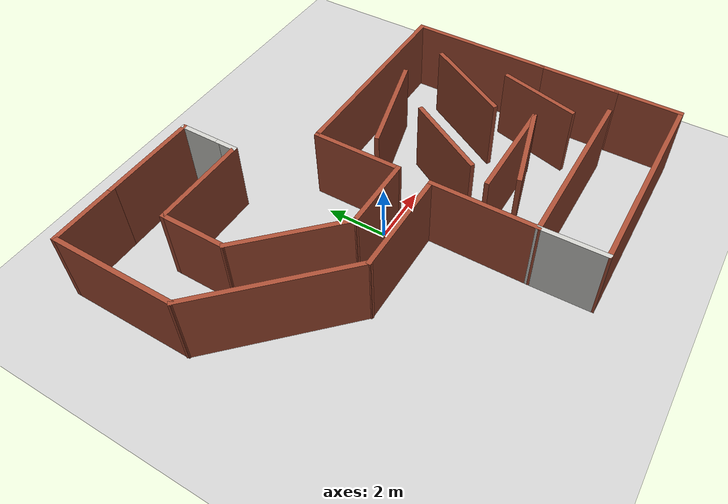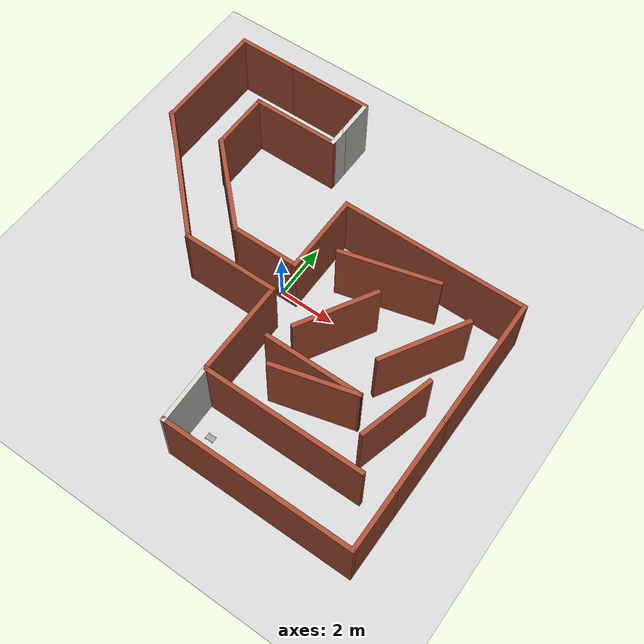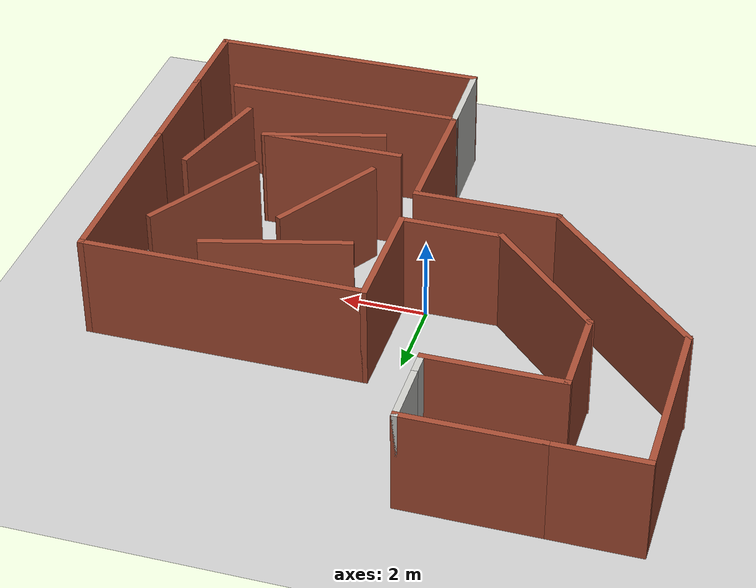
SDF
<sdf version="1.6">
 <world name="default">
  <light name="sun" type="directional">
   <pose>0 0 10 0 -0 0</pose>
   <diffuse>0.8 0.8 0.8 1</diffuse>
   <specular>0.2 0.2 0.2 1</specular>
   <attenuation>
    <range>1000</range>
    <constant>0.9</constant>
    <linear>0.01</linear>
    <quadratic>0.001</quadratic>
   </attenuation>
   <direction>-0.5 0.1 -0.9</direction>
  </light>
  <model name="ground_plane">
   <static>1</static>
   <link name="link">
    <collision name="collision">
     <geometry><plane><normal>0 0 1</normal><size>100 100</size></plane></geometry>
     <surface>
      <contact><collide_bitmask>65535</collide_bitmask></contact>
      <friction><ode><mu>100</mu><mu2>50</mu2></ode></friction>
     </surface>
    </collision>
    <visual name="visual">
     <cast_shadows>0</cast_shadows>
     <geometry><plane><normal>0 0 1</normal><size>100 100</size></plane></geometry>
     <material>
      <script><uri>file://media/materials/scripts/gazebo.material</uri><name>Gazebo/Grey</name></script>
     </material>
    </visual>
   </link>
  </model>
  <gravity>0 0 -9.8</gravity>
  <magnetic_field>6e-06 2.3e-05 -4.2e-05</magnetic_field>
  <atmosphere type="adiabatic"/>
  <physics name="default_physics" default="0" type="ode">
   <max_step_size>0.001</max_step_size>
   <real_time_factor>1</real_time_factor>
   <real_time_update_rate>1000</real_time_update_rate>
  </physics>
  <scene><ambient>0.4 0.4 0.4 1</ambient><background>0.7 0.7 0.7 1</background><shadows>1</shadows></scene>
  <spherical_coordinates>
   <surface_model>EARTH_WGS84</surface_model>
   <latitude_deg>0</latitude_deg>
   <longitude_deg>0</longitude_deg>
   <elevation>0</elevation>
   <heading_deg>0</heading_deg>
  </spherical_coordinates>
  <model name="rover">
   <link name="link">
    <pose>-0 0 -0.46 0 -0 0</pose>
    <inertial>
     <mass>1</mass>
     <inertia>
      <ixx>0.166667</ixx>
      <ixy>0</ixy>
      <ixz>0</ixz>
      <iyy>0.166667</iyy>
      <iyz>0</iyz>
      <izz>0.166667</izz>
     </inertia>
    </inertial>
    <visual name="visual">
     <geometry><box><size>0.3 0.2 0.005</size></box></geometry>
     <material>
      <script><name>Gazebo/Grey</name><uri>file://media/materials/scripts/gazebo.material</uri></script>
      <shader type="pixel"><normal_map>__default__</normal_map></shader>
      <ambient>0.3 0.3 0.3 1</ambient>
      <diffuse>0.7 0.7 0.7 1</diffuse>
      <specular>0.01 0.01 0.01 1</specular>
      <emissive>0 0 0 1</emissive>
     </material>
    </visual>
    <collision name="collision">
     <geometry><box><size>0.3 0.2 0.005</size></box></geometry>
     <surface>
      <friction>
       <ode><mu>1</mu><mu2>1</mu2><fdir1>0 0 0</fdir1><slip1>0</slip1><slip2>0</slip2></ode>
       <torsional>
        <coefficient>1</coefficient>
        <patch_radius>0</patch_radius>
        <surface_radius>0</surface_radius>
        <use_patch_radius>1</use_patch_radius>
        <ode><slip>0</slip></ode>
       </torsional>
      </friction>
      <bounce><restitution_coefficient>0</restitution_coefficient><threshold>1e+06</threshold></bounce>
      <contact>
       <collide_without_contact>0</collide_without_contact>
       <collide_without_contact_bitmask>1</collide_without_contact_bitmask>
       <collide_bitmask>1</collide_bitmask>
       <ode>
        <soft_cfm>0</soft_cfm>
        <soft_erp>0.2</soft_erp>
        <kp>1e+13</kp>
        <kd>1</kd>
        <max_vel>0.01</max_vel>
        <min_depth>0</min_depth>
       </ode>
       <bullet>
        <split_impulse>1</split_impulse>
        <split_impulse_penetration_threshold>-0.01</split_impulse_penetration_threshold>
        <soft_cfm>0</soft_cfm>
        <soft_erp>0.2</soft_erp>
        <kp>1e+13</kp>
        <kd>1</kd>
       </bullet>
      </contact>
     </surface>
    </collision>
   </link>
   <link name="link_0">
    <pose>-0.12 -0.107014 -0.46 1.5707 -0 0</pose>
    <inertial>
     <mass>1</mass>
     <inertia><ixx>0.145833</ixx><ixy>0</ixy><ixz>0</ixz><iyy>0.145833</iyy><iyz>0</iyz><izz>0.125</izz></inertia>
    </inertial>
    <visual name="visual">
     <geometry><cylinder><radius>0.03</radius><length>0.005</length></cylinder></geometry>
     <material>
      <lighting>1</lighting>
      <script><uri>file://media/materials/scripts/gazebo.material</uri><name>Gazebo/Grey</name></script>
      <shader type="pixel"><normal_map>__default__</normal_map></shader>
      <ambient>0.3 0.3 0.3 1</ambient>
      <diffuse>0.7 0.7 0.7 1</diffuse>
      <specular>0.01 0.01 0.01 1</specular>
      <emissive>0 0 0 1</emissive>
     </material>
    </visual>
    <collision name="collision">
     <geometry><cylinder><radius>0.03</radius><length>0.005</length></cylinder></geometry>
     <surface>
      <friction>
       <ode><mu>1</mu><mu2>1</mu2><fdir1>0 0 0</fdir1><slip1>0</slip1><slip2>0</slip2></ode>
       <torsional>
        <coefficient>1</coefficient>
        <patch_radius>0</patch_radius>
        <surface_radius>0</surface_radius>
        <use_patch_radius>1</use_patch_radius>
        <ode><slip>0</slip></ode>
       </torsional>
      </friction>
      <bounce><restitution_coefficient>0</restitution_coefficient><threshold>1e+06</threshold></bounce>
      <contact>
       <collide_without_contact>0</collide_without_contact>
       <collide_without_contact_bitmask>1</collide_without_contact_bitmask>
       <collide_bitmask>1</collide_bitmask>
       <ode>
        <soft_cfm>0</soft_cfm>
        <soft_erp>0.2</soft_erp>
        <kp>1e+13</kp>
        <kd>1</kd>
        <max_vel>0.01</max_vel>
        <min_depth>0</min_depth>
       </ode>
       <bullet>
        <split_impulse>1</split_impulse>
        <split_impulse_penetration_threshold>-0.01</split_impulse_penetration_threshold>
        <soft_cfm>0</soft_cfm>
        <soft_erp>0.2</soft_erp>
        <kp>1e+13</kp>
        <kd>1</kd>
       </bullet>
      </contact>
     </surface>
    </collision>
   </link>
   <link name="link_0_clone">
    <pose>0.12 -0.102503 -0.46 1.5707 -0 0</pose>
    <inertial>
     <mass>1</mass>
     <inertia><ixx>0.145833</ixx><ixy>0</ixy><ixz>0</ixz><iyy>0.145833</iyy><iyz>0</iyz><izz>0.125</izz></inertia>
    </inertial>
    <visual name="visual">
     <geometry><cylinder><radius>0.03</radius><length>0.005</length></cylinder></geometry>
     <material>
      <lighting>1</lighting>
      <script><uri>file://media/materials/scripts/gazebo.material</uri><name>Gazebo/Grey</name></script>
      <shader type="pixel"><normal_map>__default__</normal_map></shader>
      <ambient>0.3 0.3 0.3 1</ambient>
      <diffuse>0.7 0.7 0.7 1</diffuse>
      <specular>0.01 0.01 0.01 1</specular>
      <emissive>0 0 0 1</emissive>
     </material>
    </visual>
    <collision name="collision">
     <geometry><cylinder><radius>0.03</radius><length>0.005</length></cylinder></geometry>
     <surface>
      <friction>
       <ode><mu>1</mu><mu2>1</mu2><fdir1>0 0 0</fdir1><slip1>0</slip1><slip2>0</slip2></ode>
       <torsional>
        <coefficient>1</coefficient>
        <patch_radius>0</patch_radius>
        <surface_radius>0</surface_radius>
        <use_patch_radius>1</use_patch_radius>
        <ode><slip>0</slip></ode>
       </torsional>
      </friction>
      <bounce><restitution_coefficient>0</restitution_coefficient><threshold>1e+06</threshold></bounce>
      <contact>
       <collide_without_contact>0</collide_without_contact>
       <collide_without_contact_bitmask>1</collide_without_contact_bitmask>
       <collide_bitmask>1</collide_bitmask>
       <ode>
        <soft_cfm>0</soft_cfm>
        <soft_erp>0.2</soft_erp>
        <kp>1e+13</kp>
        <kd>1</kd>
        <max_vel>0.01</max_vel>
        <min_depth>0</min_depth>
       </ode>
       <bullet>
        <split_impulse>1</split_impulse>
        <split_impulse_penetration_threshold>-0.01</split_impulse_penetration_threshold>
        <soft_cfm>0</soft_cfm>
        <soft_erp>0.2</soft_erp>
        <kp>1e+13</kp>
        <kd>1</kd>
       </bullet>
      </contact>
     </surface>
    </collision>
   </link>
   <link name="link_0_clone_0">
    <pose>-0.12 0.1025 -0.46 1.5707 -0 0</pose>
    <inertial>
     <mass>1</mass>
     <inertia><ixx>0.145833</ixx><ixy>0</ixy><ixz>0</ixz><iyy>0.145833</iyy><iyz>0</iyz><izz>0.125</izz></inertia>
    </inertial>
    <visual name="visual">
     <geometry><cylinder><radius>0.03</radius><length>0.005</length></cylinder></geometry>
     <material>
      <lighting>1</lighting>
      <script><uri>file://media/materials/scripts/gazebo.material</uri><name>Gazebo/Grey</name></script>
      <shader type="pixel"><normal_map>__default__</normal_map></shader>
      <ambient>0.3 0.3 0.3 1</ambient>
      <diffuse>0.7 0.7 0.7 1</diffuse>
      <specular>0.01 0.01 0.01 1</specular>
      <emissive>0 0 0 1</emissive>
     </material>
    </visual>
    <collision name="collision">
     <geometry><cylinder><radius>0.03</radius><length>0.005</length></cylinder></geometry>
     <surface>
      <friction>
       <ode><mu>1</mu><mu2>1</mu2><fdir1>0 0 0</fdir1><slip1>0</slip1><slip2>0</slip2></ode>
       <torsional>
        <coefficient>1</coefficient>
        <patch_radius>0</patch_radius>
        <surface_radius>0</surface_radius>
        <use_patch_radius>1</use_patch_radius>
        <ode><slip>0</slip></ode>
       </torsional>
      </friction>
      <bounce><restitution_coefficient>0</restitution_coefficient><threshold>1e+06</threshold></bounce>
      <contact>
       <collide_without_contact>0</collide_without_contact>
       <collide_without_contact_bitmask>1</collide_without_contact_bitmask>
       <collide_bitmask>1</collide_bitmask>
       <ode>
        <soft_cfm>0</soft_cfm>
        <soft_erp>0.2</soft_erp>
        <kp>1e+13</kp>
        <kd>1</kd>
        <max_vel>0.01</max_vel>
        <min_depth>0</min_depth>
       </ode>
       <bullet>
        <split_impulse>1</split_impulse>
        <split_impulse_penetration_threshold>-0.01</split_impulse_penetration_threshold>
        <soft_cfm>0</soft_cfm>
        <soft_erp>0.2</soft_erp>
        <kp>1e+13</kp>
        <kd>1</kd>
       </bullet>
      </contact>
     </surface>
    </collision>
   </link>
   <link name="link_0_clone_1">
    <pose>0.12 0.1025 -0.46 1.5707 -0 0</pose>
    <inertial>
     <mass>1</mass>
     <inertia><ixx>0.145833</ixx><ixy>0</ixy><ixz>0</ixz><iyy>0.145833</iyy><iyz>0</iyz><izz>0.125</izz></inertia>
    </inertial>
    <visual name="visual">
     <geometry><cylinder><radius>0.03</radius><length>0.005</length></cylinder></geometry>
     <material>
      <lighting>1</lighting>
      <script><uri>file://media/materials/scripts/gazebo.material</uri><name>Gazebo/Grey</name></script>
      <shader type="pixel"><normal_map>__default__</normal_map></shader>
      <ambient>0.3 0.3 0.3 1</ambient>
      <diffuse>0.7 0.7 0.7 1</diffuse>
      <specular>0.01 0.01 0.01 1</specular>
      <emissive>0 0 0 1</emissive>
     </material>
    </visual>
    <collision name="collision">
     <geometry><cylinder><radius>0.03</radius><length>0.005</length></cylinder></geometry>
     <surface>
      <friction>
       <ode><mu>1</mu><mu2>1</mu2><fdir1>0 0 0</fdir1><slip1>0</slip1><slip2>0</slip2></ode>
       <torsional>
        <coefficient>1</coefficient>
        <patch_radius>0</patch_radius>
        <surface_radius>0</surface_radius>
        <use_patch_radius>1</use_patch_radius>
        <ode><slip>0</slip></ode>
       </torsional>
      </friction>
      <bounce><restitution_coefficient>0</restitution_coefficient><threshold>1e+06</threshold></bounce>
      <contact>
       <collide_without_contact>0</collide_without_contact>
       <collide_without_contact_bitmask>1</collide_without_contact_bitmask>
       <collide_bitmask>1</collide_bitmask>
       <ode>
        <soft_cfm>0</soft_cfm>
        <soft_erp>0.2</soft_erp>
        <kp>1e+13</kp>
        <kd>1</kd>
        <max_vel>0.01</max_vel>
        <min_depth>0</min_depth>
       </ode>
       <bullet>
        <split_impulse>1</split_impulse>
        <split_impulse_penetration_threshold>-0.01</split_impulse_penetration_threshold>
        <soft_cfm>0</soft_cfm>
        <soft_erp>0.2</soft_erp>
        <kp>1e+13</kp>
        <kd>1</kd>
       </bullet>
      </contact>
     </surface>
    </collision>
   </link>
   <joint name="link_JOINT_0" type="revolute">
    <parent>link</parent>
    <child>link_0</child>
    <axis>
     <xyz>0 0 1</xyz>
     <use_parent_model_frame>0</use_parent_model_frame>
     <limit>
      <lower>-1.79769e+308</lower>
      <upper>1.79769e+308</upper>
      <effort>-1</effort>
      <velocity>-1</velocity>
     </limit>
     <dynamics>
      <spring_reference>0</spring_reference>
      <spring_stiffness>0</spring_stiffness>
      <damping>0</damping>
      <friction>0</friction>
     </dynamics>
    </axis>
    <physics>
     <ode><limit><cfm>0</cfm><erp>0.2</erp></limit><suspension><cfm>0</cfm><erp>0.2</erp></suspension></ode>
    </physics>
   </joint>
   <joint name="link_JOINT_1" type="revolute">
    <parent>link</parent>
    <child>link_0_clone</child>
    <axis>
     <xyz>0 0 1</xyz>
     <use_parent_model_frame>0</use_parent_model_frame>
     <limit>
      <lower>-1.79769e+308</lower>
      <upper>1.79769e+308</upper>
      <effort>-1</effort>
      <velocity>-1</velocity>
     </limit>
     <dynamics>
      <spring_reference>0</spring_reference>
      <spring_stiffness>0</spring_stiffness>
      <damping>0</damping>
      <friction>0</friction>
     </dynamics>
    </axis>
    <physics>
     <ode><limit><cfm>0</cfm><erp>0.2</erp></limit><suspension><cfm>0</cfm><erp>0.2</erp></suspension></ode>
    </physics>
   </joint>
   <joint name="link_JOINT_2" type="revolute">
    <parent>link</parent>
    <child>link_0_clone_0</child>
    <axis>
     <xyz>0 0 1</xyz>
     <use_parent_model_frame>0</use_parent_model_frame>
     <limit>
      <lower>-1.79769e+308</lower>
      <upper>1.79769e+308</upper>
      <effort>-1</effort>
      <velocity>-1</velocity>
     </limit>
     <dynamics>
      <spring_reference>0</spring_reference>
      <spring_stiffness>0</spring_stiffness>
      <damping>0</damping>
      <friction>0</friction>
     </dynamics>
    </axis>
    <physics>
     <ode><limit><cfm>0</cfm><erp>0.2</erp></limit><suspension><cfm>0</cfm><erp>0.2</erp></suspension></ode>
    </physics>
   </joint>
   <joint name="link_JOINT_3" type="revolute">
    <parent>link</parent>
    <child>link_0_clone_1</child>
    <axis>
     <xyz>0 0 1</xyz>
     <use_parent_model_frame>0</use_parent_model_frame>
     <limit>
      <lower>-1.79769e+308</lower>
      <upper>1.79769e+308</upper>
      <effort>-1</effort>
      <velocity>-1</velocity>
     </limit>
     <dynamics>
      <spring_reference>0</spring_reference>
      <spring_stiffness>0</spring_stiffness>
      <damping>0</damping>
      <friction>0</friction>
     </dynamics>
    </axis>
    <physics>
     <ode><limit><cfm>0</cfm><erp>0.2</erp></limit><suspension><cfm>0</cfm><erp>0.2</erp></suspension></ode>
    </physics>
   </joint>
   <static>0</static>
   <pose>-3.10083 5.48275 0.489997 2e-06 -2.4e-05 0.022964</pose>
  </model>
  <model name="maze">
   <pose>0.41055 -0.04871 0 0 -0 0</pose>
   <link name="Wall_12">
    <collision name="Wall_12_Collision">
     <geometry><box><size>3.25 0.15 2.5</size></box></geometry>
     <pose>0 0 1.25 0 -0 0</pose>
    </collision>
    <visual name="Wall_12_Visual">
     <pose>0 0 1.25 0 -0 0</pose>
     <geometry><box><size>3.25 0.15 2.5</size></box></geometry>
     <material>
      <script><uri>file://media/materials/scripts/gazebo.material</uri><name>Gazebo/Bricks</name></script>
      <ambient>1 1 1 1</ambient>
     </material>
     <meta><layer>0</layer></meta>
    </visual>
    <pose>-3.13226 4.57353 0 0 -0 3.14159</pose>
   </link>
   <link name="Wall_14">
    <collision name="Wall_14_Collision">
     <geometry><box><size>2.25 0.15 2.5</size></box></geometry>
     <pose>0 0 1.25 0 -0 0</pose>
    </collision>
    <visual name="Wall_14_Visual">
     <pose>0 0 1.25 0 -0 0</pose>
     <geometry><box><size>2.25 0.15 2.5</size></box></geometry>
     <material>
      <script><uri>file://media/materials/scripts/gazebo.material</uri><name>Gazebo/Bricks</name></script>
      <ambient>1 1 1 1</ambient>
     </material>
     <meta><layer>0</layer></meta>
    </visual>
    <pose>-4.68226 3.52353 0 0 0 -1.5708</pose>
   </link>
   <link name="Wall_16">
    <collision name="Wall_16_Collision">
     <geometry><box><size>2.25 0.15 2.5</size></box></geometry>
     <pose>0 0 1.25 0 -0 0</pose>
    </collision>
    <visual name="Wall_16_Visual">
     <pose>0 0 1.25 0 -0 0</pose>
     <geometry><box><size>2.25 0.15 2.5</size></box></geometry>
     <material>
      <script><uri>file://media/materials/scripts/gazebo.material</uri><name>Gazebo/Bricks</name></script>
      <ambient>1 1 1 1</ambient>
     </material>
     <meta><layer>0</layer></meta>
    </visual>
    <pose>-5.73226 6.52353 0 0 -0 3.14159</pose>
   </link>
   <link name="Wall_17">
    <collision name="Wall_17_Collision">
     <geometry><box><size>4.25 0.15 2.5</size></box></geometry>
     <pose>0 0 1.25 0 -0 0</pose>
    </collision>
    <visual name="Wall_17_Visual">
     <pose>0 0 1.25 0 -0 0</pose>
     <geometry><box><size>4.25 0.15 2.5</size></box></geometry>
     <material>
      <script><uri>file://media/materials/scripts/gazebo.material</uri><name>Gazebo/Bricks</name></script>
      <ambient>1 1 1 1</ambient>
     </material>
     <meta><layer>0</layer></meta>
    </visual>
    <pose>-6.78226 4.47353 0 0 0 -1.5708</pose>
   </link>
   <link name="Wall_19">
    <collision name="Wall_19_Collision">
     <geometry><box><size>5.25 0.15 2.5</size></box></geometry>
     <pose>0 0 1.25 0 -0 0</pose>
    </collision>
    <visual name="Wall_19_Visual">
     <pose>0 0 1.25 0 -0 0</pose>
     <geometry><box><size>5.25 0.15 2.5</size></box></geometry>
     <material>
      <script><uri>file://media/materials/scripts/gazebo.material</uri><name>Gazebo/Bricks</name></script>
      <ambient>1 1 1 1</ambient>
     </material>
     <meta><layer>0</layer></meta>
    </visual>
    <pose>-4.97914 0.620404 0 0 0 -0.785398</pose>
   </link>
   <link name="Wall_20">
    <collision name="Wall_20_Collision">
     <geometry><box><size>3.5 0.15 2.5</size></box></geometry>
     <pose>0 0 1.25 0 -0 0</pose>
    </collision>
    <visual name="Wall_20_Visual">
     <pose>0 0 1.25 0 -0 0</pose>
     <geometry><box><size>3.5 0.15 2.5</size></box></geometry>
     <material>
      <script><uri>file://media/materials/scripts/gazebo.material</uri><name>Gazebo/Bricks</name></script>
      <ambient>1 1 1 1</ambient>
     </material>
     <meta><layer>0</layer></meta>
    </visual>
    <pose>-1.50101 -1.18272 0 0 -0 0</pose>
   </link>
   <link name="Wall_22">
    <collision name="Wall_22_Collision">
     <geometry><box><size>3.75 0.15 2.5</size></box></geometry>
     <pose>0 0 1.25 0 -0 0</pose>
    </collision>
    <visual name="Wall_22_Visual">
     <pose>0 0 1.25 0 -0 0</pose>
     <geometry><box><size>3.75 0.15 2.5</size></box></geometry>
     <material>
      <script><uri>file://media/materials/scripts/gazebo.material</uri><name>Gazebo/Bricks</name></script>
      <ambient>1 1 1 1</ambient>
     </material>
     <meta><layer>0</layer></meta>
    </visual>
    <pose>-3.40947 1.20073 0 0 0 -0.785398</pose>
   </link>
   <link name="Wall_23">
    <collision name="Wall_23_Collision">
     <geometry><box><size>2.5 0.15 2.5</size></box></geometry>
     <pose>0 0 1.25 0 -0 0</pose>
    </collision>
    <visual name="Wall_23_Visual">
     <pose>0 0 1.25 0 -0 0</pose>
     <geometry><box><size>2.5 0.15 2.5</size></box></geometry>
     <material>
      <script><uri>file://media/materials/scripts/gazebo.material</uri><name>Gazebo/Bricks</name></script>
      <ambient>1 1 1 1</ambient>
     </material>
     <meta><layer>0</layer></meta>
    </visual>
    <pose>-0.961675 -0.072058 0 0 -0 0</pose>
   </link>
   <link name="Wall_24">
    <collision name="Wall_24_Collision">
     <geometry><box><size>3 0.15 2.5</size></box></geometry>
     <pose>0 0 1.25 0 -0 0</pose>
    </collision>
    <visual name="Wall_24_Visual">
     <pose>0 0 1.25 0 -0 0</pose>
     <geometry><box><size>3 0.15 2.5</size></box></geometry>
     <material>
      <script><uri>file://media/materials/scripts/gazebo.material</uri><name>Gazebo/Bricks</name></script>
      <ambient>1 1 1 1</ambient>
     </material>
     <meta><layer>0</layer></meta>
    </visual>
    <pose>0.213325 1.35294 0 0 -0 1.5708</pose>
   </link>
   <link name="Wall_25">
    <collision name="Wall_25_Collision">
     <geometry><box><size>6.75 0.15 2.5</size></box></geometry>
     <pose>0 0 1.25 0 -0 0</pose>
    </collision>
    <visual name="Wall_25_Visual">
     <pose>0 0 1.25 0 -0 0</pose>
     <geometry><box><size>6.75 0.15 2.5</size></box></geometry>
     <material>
      <script><uri>file://media/materials/scripts/gazebo.material</uri><name>Gazebo/Bricks</name></script>
      <ambient>1 1 1 1</ambient>
     </material>
     <meta><layer>0</layer></meta>
    </visual>
    <pose>3.51333 2.77794 0 0 -0 0</pose>
   </link>
   <link name="Wall_26">
    <collision name="Wall_26_Collision">
     <geometry><box><size>4.75 0.15 2.5</size></box></geometry>
     <pose>0 0 1.25 0 -0 0</pose>
    </collision>
    <visual name="Wall_26_Visual">
     <pose>0 0 1.25 0 -0 0</pose>
     <geometry><box><size>4.75 0.15 2.5</size></box></geometry>
     <material>
      <script><uri>file://media/materials/scripts/gazebo.material</uri><name>Gazebo/Bricks</name></script>
      <ambient>1 1 1 1</ambient>
     </material>
     <meta><layer>0</layer></meta>
    </visual>
    <pose>6.81332 0.477942 0 0 0 -1.5708</pose>
   </link>
   <link name="Wall_28">
    <collision name="Wall_28_Collision">
     <geometry><box><size>2.75 0.15 2.5</size></box></geometry>
     <pose>0 0 1.25 0 -0 0</pose>
    </collision>
    <visual name="Wall_28_Visual">
     <pose>0 0 1.25 0 -0 0</pose>
     <geometry><box><size>2.75 0.15 2.5</size></box></geometry>
     <material>
      <script><uri>file://media/materials/scripts/gazebo.material</uri><name>Gazebo/Bricks</name></script>
      <ambient>1 1 1 1</ambient>
     </material>
     <meta><layer>0</layer></meta>
    </visual>
    <pose>6.81332 -3.12206 0 0 0 -1.5708</pose>
   </link>
   <link name="Wall_30">
    <collision name="Wall_30_Collision">
     <geometry><box><size>3.5 0.15 2.5</size></box></geometry>
     <pose>0 0 1.25 0 -0 0</pose>
    </collision>
    <visual name="Wall_30_Visual">
     <pose>0 0 1.25 0 -0 0</pose>
     <geometry><box><size>3.5 0.15 2.5</size></box></geometry>
     <material>
      <script><uri>file://media/materials/scripts/gazebo.material</uri><name>Gazebo/Bricks</name></script>
      <ambient>1 1 1 1</ambient>
     </material>
     <meta><layer>0</layer></meta>
    </visual>
    <pose>0.173985 -2.85772 0 0 0 -1.5708</pose>
   </link>
   <link name="Wall_31">
    <collision name="Wall_31_Collision">
     <geometry><box><size>5.75 0.15 2.5</size></box></geometry>
     <pose>0 0 1.25 0 -0 0</pose>
    </collision>
    <visual name="Wall_31_Visual">
     <pose>0 0 1.25 0 -0 0</pose>
     <geometry><box><size>5.75 0.15 2.5</size></box></geometry>
     <material>
      <script><uri>file://media/materials/scripts/gazebo.material</uri><name>Gazebo/Bricks</name></script>
      <ambient>1 1 1 1</ambient>
     </material>
     <meta><layer>0</layer></meta>
    </visual>
    <pose>2.97398 -4.53272 0 0 -0 0</pose>
   </link>
   <link name="Wall_33">
    <collision name="Wall_33_Collision">
     <geometry><box><size>3 0.15 2.5</size></box></geometry>
     <pose>0 0 1.25 0 -0 0</pose>
    </collision>
    <visual name="Wall_33_Visual">
     <pose>0 0 1.25 0 -0 0</pose>
     <geometry><box><size>3 0.15 2.5</size></box></geometry>
     <material>
      <script><uri>file://media/materials/scripts/gazebo.material</uri><name>Gazebo/Bricks</name></script>
      <ambient>1 1 1 1</ambient>
     </material>
     <meta><layer>0</layer></meta>
    </visual>
    <pose>2.16024 -0.612388 0 0 -0 1.0472</pose>
   </link>
   <link name="Wall_35">
    <collision name="Wall_35_Collision">
     <geometry><box><size>3.5 0.15 2.5</size></box></geometry>
     <pose>0 0 1.25 0 -0 0</pose>
    </collision>
    <visual name="Wall_35_Visual">
     <pose>0 0 1.25 0 -0 0</pose>
     <geometry><box><size>3.5 0.15 2.5</size></box></geometry>
     <material>
      <script><uri>file://media/materials/scripts/gazebo.material</uri><name>Gazebo/Bricks</name></script>
      <ambient>1 1 1 1</ambient>
     </material>
     <meta><layer>0</layer></meta>
    </visual>
    <pose>2.65567 1.57705 0 0 -0 0.261799</pose>
   </link>
   <link name="Wall_37">
    <collision name="Wall_37_Collision">
     <geometry><box><size>3.25 0.15 2.5</size></box></geometry>
     <pose>0 0 1.25 0 -0 0</pose>
    </collision>
    <visual name="Wall_37_Visual">
     <pose>0 0 1.25 0 -0 0</pose>
     <geometry><box><size>3.25 0.15 2.5</size></box></geometry>
     <material>
      <script><uri>file://media/materials/scripts/gazebo.material</uri><name>Gazebo/Bricks</name></script>
      <ambient>1 1 1 1</ambient>
     </material>
     <meta><layer>0</layer></meta>
    </visual>
    <pose>4.94274 0.041187 0 0 0 -2.0944</pose>
   </link>
   <link name="Wall_39">
    <collision name="Wall_39_Collision">
     <geometry><box><size>3.5 0.15 2.5</size></box></geometry>
     <pose>0 0 1.25 0 -0 0</pose>
    </collision>
    <visual name="Wall_39_Visual">
     <pose>0 0 1.25 0 -0 0</pose>
     <geometry><box><size>3.5 0.15 2.5</size></box></geometry>
     <material>
      <script><uri>file://media/materials/scripts/gazebo.material</uri><name>Gazebo/Bricks</name></script>
      <ambient>1 1 1 1</ambient>
     </material>
     <meta><layer>0</layer></meta>
    </visual>
    <pose>2.69274 -2.58647 0 0 -0 0</pose>
   </link>
   <link name="Wall_40">
    <collision name="Wall_40_Collision">
     <geometry><box><size>3 0.15 2.5</size></box></geometry>
     <pose>0 0 1.25 0 -0 0</pose>
    </collision>
    <visual name="Wall_40_Visual">
     <pose>0 0 1.25 0 -0 0</pose>
     <geometry><box><size>3 0.15 2.5</size></box></geometry>
     <material>
      <script><uri>file://media/materials/scripts/gazebo.material</uri><name>Gazebo/Bricks</name></script>
      <ambient>1 1 1 1</ambient>
     </material>
     <meta><layer>0</layer></meta>
    </visual>
    <pose>2.9913 -2.95529 0 0 0 -2.87979</pose>
   </link>
   <link name="Wall_42">
    <collision name="Wall_42_Collision">
     <geometry><box><size>2.75 0.15 2.5</size></box></geometry>
     <pose>0 0 1.25 0 -0 0</pose>
    </collision>
    <visual name="Wall_42_Visual">
     <pose>0 0 1.25 0 -0 0</pose>
     <geometry><box><size>2.75 0.15 2.5</size></box></geometry>
     <material>
      <script><uri>file://media/materials/scripts/gazebo.material</uri><name>Gazebo/Bricks</name></script>
      <ambient>1 1 1 1</ambient>
     </material>
     <meta><layer>0</layer></meta>
    </visual>
    <pose>5.46128 -2.29218 0 0 0 -1.8326</pose>
   </link>
   <link name="Wall_44">
    <collision name="Wall_44_Collision">
     <geometry><box><size>2.25 0.15 2.5</size></box></geometry>
     <pose>0 0 1.25 0 -0 0</pose>
    </collision>
    <visual name="Wall_44_Visual">
     <pose>0 0 1.25 0 -0 0</pose>
     <geometry><box><size>2.25 0.15 2.5</size></box></geometry>
     <material>
      <script><uri>file://media/materials/scripts/gazebo.material</uri><name>Gazebo/Bricks</name></script>
      <ambient>1 1 1 1</ambient>
     </material>
     <meta><layer>0</layer></meta>
    </visual>
    <pose>6.81332 -5.47206 0 0 0 -1.5708</pose>
   </link>
   <link name="Wall_45">
    <collision name="Wall_45_Collision">
     <geometry><box><size>6.75 0.15 2.5</size></box></geometry>
     <pose>0 0 1.25 0 -0 0</pose>
    </collision>
    <visual name="Wall_45_Visual">
     <pose>0 0 1.25 0 -0 0</pose>
     <geometry><box><size>6.75 0.15 2.5</size></box></geometry>
     <material>
      <script><uri>file://media/materials/scripts/gazebo.material</uri><name>Gazebo/Bricks</name></script>
      <ambient>1 1 1 1</ambient>
     </material>
     <meta><layer>0</layer></meta>
    </visual>
    <pose>3.51333 -6.52206 0 0 -0 3.14159</pose>
   </link>
   <link name="Wall_47">
    <collision name="Wall_47_Collision">
     <geometry><box><size>2.13973 0.15 2.5</size></box></geometry>
     <pose>0 0 1.25 0 -0 0</pose>
    </collision>
    <visual name="Wall_47_Visual">
     <pose>0 0 1.25 0 -0 0</pose>
     <geometry><box><size>2.13973 0.15 2.5</size></box></geometry>
     <material>
      <script><uri>file://media/materials/scripts/gazebo.material</uri><name>Gazebo/CeilingTiled</name></script>
      <ambient>0.666667 0.0392157 0.121569 1</ambient>
     </material>
     <meta><layer>0</layer></meta>
    </visual>
    <pose>0.193655 -5.52739 0 0 0 -1.55102</pose>
   </link>
   <link name="Wall_7">
    <collision name="Wall_7_Collision">
     <geometry><box><size>3.25 0.15 2.5</size></box></geometry>
     <pose>0 0 1.25 0 -0 0</pose>
    </collision>
    <visual name="Wall_7_Visual">
     <pose>0 0 1.25 0 -0 0</pose>
     <geometry><box><size>3.25 0.15 2.5</size></box></geometry>
     <material>
      <script><uri>file://media/materials/scripts/gazebo.material</uri><name>Gazebo/Bricks</name></script>
      <ambient>1 1 1 1</ambient>
     </material>
     <meta><layer>0</layer></meta>
    </visual>
    <pose>-3.13226 6.52353 0 0 -0 0</pose>
   </link>
   <link name="Wall_8">
    <collision name="Wall_8_Collision">
     <geometry><box><size>1.5 0.15 2.5</size></box></geometry>
     <pose>0 0 1.25 0 -0 0</pose>
    </collision>
    <visual name="Wall_8_Visual">
     <pose>0 0 1.25 0 -0 0</pose>
     <geometry><box><size>1.5 0.15 2.5</size></box></geometry>
     <material>
      <script><uri>file://media/materials/scripts/gazebo.material</uri><name>Gazebo/CeilingTiled</name></script>
      <ambient>0.0627451 0.0627451 1 1</ambient>
     </material>
     <meta><layer>0</layer></meta>
    </visual>
    <pose>-1.58226 5.84853 0 0 0 -1.5708</pose>
   </link>
   <link name="Wall_9">
    <collision name="Wall_9_Collision">
     <geometry><box><size>0.75 0.15 2.5</size></box></geometry>
     <pose>0 0 1.25 0 -0 0</pose>
    </collision>
    <visual name="Wall_9_Visual">
     <pose>0 0 1.25 0 -0 0</pose>
     <geometry><box><size>0.75 0.15 2.5</size></box></geometry>
     <material>
      <script><uri>file://media/materials/scripts/gazebo.material</uri><name>Gazebo/CeilingTiled</name></script>
      <ambient>0.0627451 0.0627451 1 1</ambient>
     </material>
     <meta><layer>0</layer></meta>
    </visual>
    <pose>-1.58226 4.87353 0 0 0 -1.5708</pose>
   </link>
   <static>1</static>
  </model>
  <model name="rover_clone">
   <link name="link">
    <pose>-0 0 -0.46 0 -0 0</pose>
    <inertial>
     <mass>1</mass>
     <inertia>
      <ixx>0.166667</ixx>
      <ixy>0</ixy>
      <ixz>0</ixz>
      <iyy>0.166667</iyy>
      <iyz>0</iyz>
      <izz>0.166667</izz>
     </inertia>
    </inertial>
    <visual name="visual">
     <geometry><box><size>0.3 0.2 0.005</size></box></geometry>
     <material>
      <script><name>Gazebo/Grey</name><uri>file://media/materials/scripts/gazebo.material</uri></script>
      <shader type="pixel"><normal_map>__default__</normal_map></shader>
      <ambient>0.3 0.3 0.3 1</ambient>
      <diffuse>0.7 0.7 0.7 1</diffuse>
      <specular>0.01 0.01 0.01 1</specular>
      <emissive>0 0 0 1</emissive>
     </material>
    </visual>
    <collision name="collision">
     <geometry><box><size>0.3 0.2 0.005</size></box></geometry>
     <surface>
      <friction>
       <ode><mu>1</mu><mu2>1</mu2><fdir1>0 0 0</fdir1><slip1>0</slip1><slip2>0</slip2></ode>
       <torsional>
        <coefficient>1</coefficient>
        <patch_radius>0</patch_radius>
        <surface_radius>0</surface_radius>
        <use_patch_radius>1</use_patch_radius>
        <ode><slip>0</slip></ode>
       </torsional>
      </friction>
      <bounce><restitution_coefficient>0</restitution_coefficient><threshold>1e+06</threshold></bounce>
      <contact>
       <collide_without_contact>0</collide_without_contact>
       <collide_without_contact_bitmask>1</collide_without_contact_bitmask>
       <collide_bitmask>1</collide_bitmask>
       <ode>
        <soft_cfm>0</soft_cfm>
        <soft_erp>0.2</soft_erp>
        <kp>1e+13</kp>
        <kd>1</kd>
        <max_vel>0.01</max_vel>
        <min_depth>0</min_depth>
       </ode>
       <bullet>
        <split_impulse>1</split_impulse>
        <split_impulse_penetration_threshold>-0.01</split_impulse_penetration_threshold>
        <soft_cfm>0</soft_cfm>
        <soft_erp>0.2</soft_erp>
        <kp>1e+13</kp>
        <kd>1</kd>
       </bullet>
      </contact>
     </surface>
    </collision>
   </link>
   <link name="link_0">
    <pose>-0.12 -0.107014 -0.46 1.5707 -0 0</pose>
    <inertial>
     <mass>1</mass>
     <inertia><ixx>0.145833</ixx><ixy>0</ixy><ixz>0</ixz><iyy>0.145833</iyy><iyz>0</iyz><izz>0.125</izz></inertia>
    </inertial>
    <visual name="visual">
     <geometry><cylinder><radius>0.03</radius><length>0.005</length></cylinder></geometry>
     <material>
      <lighting>1</lighting>
      <script><uri>file://media/materials/scripts/gazebo.material</uri><name>Gazebo/Grey</name></script>
      <shader type="pixel"><normal_map>__default__</normal_map></shader>
      <ambient>0.3 0.3 0.3 1</ambient>
      <diffuse>0.7 0.7 0.7 1</diffuse>
      <specular>0.01 0.01 0.01 1</specular>
      <emissive>0 0 0 1</emissive>
     </material>
    </visual>
    <collision name="collision">
     <geometry><cylinder><radius>0.03</radius><length>0.005</length></cylinder></geometry>
     <surface>
      <friction>
       <ode><mu>1</mu><mu2>1</mu2><fdir1>0 0 0</fdir1><slip1>0</slip1><slip2>0</slip2></ode>
       <torsional>
        <coefficient>1</coefficient>
        <patch_radius>0</patch_radius>
        <surface_radius>0</surface_radius>
        <use_patch_radius>1</use_patch_radius>
        <ode><slip>0</slip></ode>
       </torsional>
      </friction>
      <bounce><restitution_coefficient>0</restitution_coefficient><threshold>1e+06</threshold></bounce>
      <contact>
       <collide_without_contact>0</collide_without_contact>
       <collide_without_contact_bitmask>1</collide_without_contact_bitmask>
       <collide_bitmask>1</collide_bitmask>
       <ode>
        <soft_cfm>0</soft_cfm>
        <soft_erp>0.2</soft_erp>
        <kp>1e+13</kp>
        <kd>1</kd>
        <max_vel>0.01</max_vel>
        <min_depth>0</min_depth>
       </ode>
       <bullet>
        <split_impulse>1</split_impulse>
        <split_impulse_penetration_threshold>-0.01</split_impulse_penetration_threshold>
        <soft_cfm>0</soft_cfm>
        <soft_erp>0.2</soft_erp>
        <kp>1e+13</kp>
        <kd>1</kd>
       </bullet>
      </contact>
     </surface>
    </collision>
   </link>
   <link name="link_0_clone">
    <pose>0.12 -0.102503 -0.46 1.5707 -0 0</pose>
    <inertial>
     <mass>1</mass>
     <inertia><ixx>0.145833</ixx><ixy>0</ixy><ixz>0</ixz><iyy>0.145833</iyy><iyz>0</iyz><izz>0.125</izz></inertia>
    </inertial>
    <visual name="visual">
     <geometry><cylinder><radius>0.03</radius><length>0.005</length></cylinder></geometry>
     <material>
      <lighting>1</lighting>
      <script><uri>file://media/materials/scripts/gazebo.material</uri><name>Gazebo/Grey</name></script>
      <shader type="pixel"><normal_map>__default__</normal_map></shader>
      <ambient>0.3 0.3 0.3 1</ambient>
      <diffuse>0.7 0.7 0.7 1</diffuse>
      <specular>0.01 0.01 0.01 1</specular>
      <emissive>0 0 0 1</emissive>
     </material>
    </visual>
    <collision name="collision">
     <geometry><cylinder><radius>0.03</radius><length>0.005</length></cylinder></geometry>
     <surface>
      <friction>
       <ode><mu>1</mu><mu2>1</mu2><fdir1>0 0 0</fdir1><slip1>0</slip1><slip2>0</slip2></ode>
       <torsional>
        <coefficient>1</coefficient>
        <patch_radius>0</patch_radius>
        <surface_radius>0</surface_radius>
        <use_patch_radius>1</use_patch_radius>
        <ode><slip>0</slip></ode>
       </torsional>
      </friction>
      <bounce><restitution_coefficient>0</restitution_coefficient><threshold>1e+06</threshold></bounce>
      <contact>
       <collide_without_contact>0</collide_without_contact>
       <collide_without_contact_bitmask>1</collide_without_contact_bitmask>
       <collide_bitmask>1</collide_bitmask>
       <ode>
        <soft_cfm>0</soft_cfm>
        <soft_erp>0.2</soft_erp>
        <kp>1e+13</kp>
        <kd>1</kd>
        <max_vel>0.01</max_vel>
        <min_depth>0</min_depth>
       </ode>
       <bullet>
        <split_impulse>1</split_impulse>
        <split_impulse_penetration_threshold>-0.01</split_impulse_penetration_threshold>
        <soft_cfm>0</soft_cfm>
        <soft_erp>0.2</soft_erp>
        <kp>1e+13</kp>
        <kd>1</kd>
       </bullet>
      </contact>
     </surface>
    </collision>
   </link>
   <link name="link_0_clone_0">
    <pose>-0.12 0.1025 -0.46 1.5707 -0 0</pose>
    <inertial>
     <mass>1</mass>
     <inertia><ixx>0.145833</ixx><ixy>0</ixy><ixz>0</ixz><iyy>0.145833</iyy><iyz>0</iyz><izz>0.125</izz></inertia>
    </inertial>
    <visual name="visual">
     <geometry><cylinder><radius>0.03</radius><length>0.005</length></cylinder></geometry>
     <material>
      <lighting>1</lighting>
      <script><uri>file://media/materials/scripts/gazebo.material</uri><name>Gazebo/Grey</name></script>
      <shader type="pixel"><normal_map>__default__</normal_map></shader>
      <ambient>0.3 0.3 0.3 1</ambient>
      <diffuse>0.7 0.7 0.7 1</diffuse>
      <specular>0.01 0.01 0.01 1</specular>
      <emissive>0 0 0 1</emissive>
     </material>
    </visual>
    <collision name="collision">
     <geometry><cylinder><radius>0.03</radius><length>0.005</length></cylinder></geometry>
     <surface>
      <friction>
       <ode><mu>1</mu><mu2>1</mu2><fdir1>0 0 0</fdir1><slip1>0</slip1><slip2>0</slip2></ode>
       <torsional>
        <coefficient>1</coefficient>
        <patch_radius>0</patch_radius>
        <surface_radius>0</surface_radius>
        <use_patch_radius>1</use_patch_radius>
        <ode><slip>0</slip></ode>
       </torsional>
      </friction>
      <bounce><restitution_coefficient>0</restitution_coefficient><threshold>1e+06</threshold></bounce>
      <contact>
       <collide_without_contact>0</collide_without_contact>
       <collide_without_contact_bitmask>1</collide_without_contact_bitmask>
       <collide_bitmask>1</collide_bitmask>
       <ode>
        <soft_cfm>0</soft_cfm>
        <soft_erp>0.2</soft_erp>
        <kp>1e+13</kp>
        <kd>1</kd>
        <max_vel>0.01</max_vel>
        <min_depth>0</min_depth>
       </ode>
       <bullet>
        <split_impulse>1</split_impulse>
        <split_impulse_penetration_threshold>-0.01</split_impulse_penetration_threshold>
        <soft_cfm>0</soft_cfm>
        <soft_erp>0.2</soft_erp>
        <kp>1e+13</kp>
        <kd>1</kd>
       </bullet>
      </contact>
     </surface>
    </collision>
   </link>
   <link name="link_0_clone_1">
    <pose>0.12 0.1025 -0.46 1.5707 -0 0</pose>
    <inertial>
     <mass>1</mass>
     <inertia><ixx>0.145833</ixx><ixy>0</ixy><ixz>0</ixz><iyy>0.145833</iyy><iyz>0</iyz><izz>0.125</izz></inertia>
    </inertial>
    <visual name="visual">
     <geometry><cylinder><radius>0.03</radius><length>0.005</length></cylinder></geometry>
     <material>
      <lighting>1</lighting>
      <script><uri>file://media/materials/scripts/gazebo.material</uri><name>Gazebo/Grey</name></script>
      <shader type="pixel"><normal_map>__default__</normal_map></shader>
      <ambient>0.3 0.3 0.3 1</ambient>
      <diffuse>0.7 0.7 0.7 1</diffuse>
      <specular>0.01 0.01 0.01 1</specular>
      <emissive>0 0 0 1</emissive>
     </material>
    </visual>
    <collision name="collision">
     <geometry><cylinder><radius>0.03</radius><length>0.005</length></cylinder></geometry>
     <surface>
      <friction>
       <ode><mu>1</mu><mu2>1</mu2><fdir1>0 0 0</fdir1><slip1>0</slip1><slip2>0</slip2></ode>
       <torsional>
        <coefficient>1</coefficient>
        <patch_radius>0</patch_radius>
        <surface_radius>0</surface_radius>
        <use_patch_radius>1</use_patch_radius>
        <ode><slip>0</slip></ode>
       </torsional>
      </friction>
      <bounce><restitution_coefficient>0</restitution_coefficient><threshold>1e+06</threshold></bounce>
      <contact>
       <collide_without_contact>0</collide_without_contact>
       <collide_without_contact_bitmask>1</collide_without_contact_bitmask>
       <collide_bitmask>1</collide_bitmask>
       <ode>
        <soft_cfm>0</soft_cfm>
        <soft_erp>0.2</soft_erp>
        <kp>1e+13</kp>
        <kd>1</kd>
        <max_vel>0.01</max_vel>
        <min_depth>0</min_depth>
       </ode>
       <bullet>
        <split_impulse>1</split_impulse>
        <split_impulse_penetration_threshold>-0.01</split_impulse_penetration_threshold>
        <soft_cfm>0</soft_cfm>
        <soft_erp>0.2</soft_erp>
        <kp>1e+13</kp>
        <kd>1</kd>
       </bullet>
      </contact>
     </surface>
    </collision>
   </link>
   <joint name="link_JOINT_0" type="revolute">
    <parent>link</parent>
    <child>link_0</child>
    <axis>
     <xyz>0 0 1</xyz>
     <use_parent_model_frame>0</use_parent_model_frame>
     <limit>
      <lower>-1.79769e+308</lower>
      <upper>1.79769e+308</upper>
      <effort>-1</effort>
      <velocity>-1</velocity>
     </limit>
     <dynamics>
      <spring_reference>0</spring_reference>
      <spring_stiffness>0</spring_stiffness>
      <damping>0</damping>
      <friction>0</friction>
     </dynamics>
    </axis>
    <physics>
     <ode><limit><cfm>0</cfm><erp>0.2</erp></limit><suspension><cfm>0</cfm><erp>0.2</erp></suspension></ode>
    </physics>
   </joint>
   <joint name="link_JOINT_1" type="revolute">
    <parent>link</parent>
    <child>link_0_clone</child>
    <axis>
     <xyz>0 0 1</xyz>
     <use_parent_model_frame>0</use_parent_model_frame>
     <limit>
      <lower>-1.79769e+308</lower>
      <upper>1.79769e+308</upper>
      <effort>-1</effort>
      <velocity>-1</velocity>
     </limit>
     <dynamics>
      <spring_reference>0</spring_reference>
      <spring_stiffness>0</spring_stiffness>
      <damping>0</damping>
      <friction>0</friction>
     </dynamics>
    </axis>
    <physics>
     <ode><limit><cfm>0</cfm><erp>0.2</erp></limit><suspension><cfm>0</cfm><erp>0.2</erp></suspension></ode>
    </physics>
   </joint>
   <joint name="link_JOINT_2" type="revolute">
    <parent>link</parent>
    <child>link_0_clone_0</child>
    <axis>
     <xyz>0 0 1</xyz>
     <use_parent_model_frame>0</use_parent_model_frame>
     <limit>
      <lower>-1.79769e+308</lower>
      <upper>1.79769e+308</upper>
      <effort>-1</effort>
      <velocity>-1</velocity>
     </limit>
     <dynamics>
      <spring_reference>0</spring_reference>
      <spring_stiffness>0</spring_stiffness>
      <damping>0</damping>
      <friction>0</friction>
     </dynamics>
    </axis>
    <physics>
     <ode><limit><cfm>0</cfm><erp>0.2</erp></limit><suspension><cfm>0</cfm><erp>0.2</erp></suspension></ode>
    </physics>
   </joint>
   <joint name="link_JOINT_3" type="revolute">
    <parent>link</parent>
    <child>link_0_clone_1</child>
    <axis>
     <xyz>0 0 1</xyz>
     <use_parent_model_frame>0</use_parent_model_frame>
     <limit>
      <lower>-1.79769e+308</lower>
      <upper>1.79769e+308</upper>
      <effort>-1</effort>
      <velocity>-1</velocity>
     </limit>
     <dynamics>
      <spring_reference>0</spring_reference>
      <spring_stiffness>0</spring_stiffness>
      <damping>0</damping>
      <friction>0</friction>
     </dynamics>
    </axis>
    <physics>
     <ode><limit><cfm>0</cfm><erp>0.2</erp></limit><suspension><cfm>0</cfm><erp>0.2</erp></suspension></ode>
    </physics>
   </joint>
   <static>0</static>
   <pose>1.29812 -5.52257 0.489998 4e-06 2e-05 0.020078</pose>
  </model>
 </world>
</sdf>
